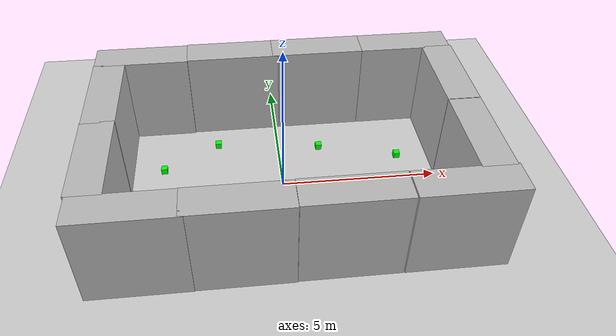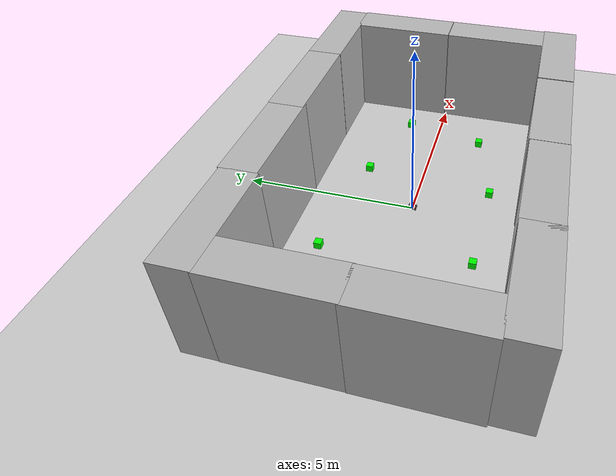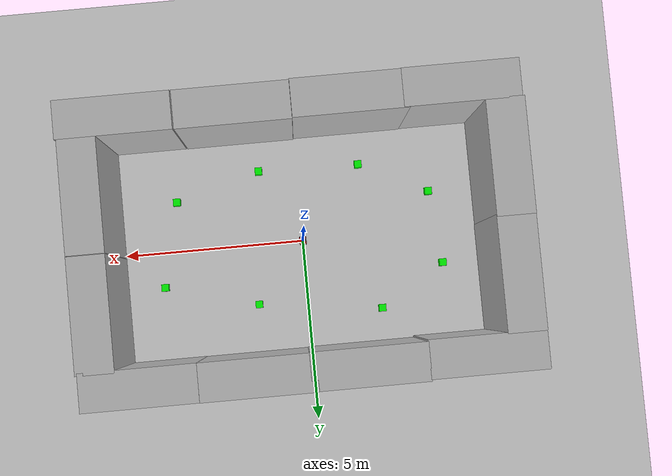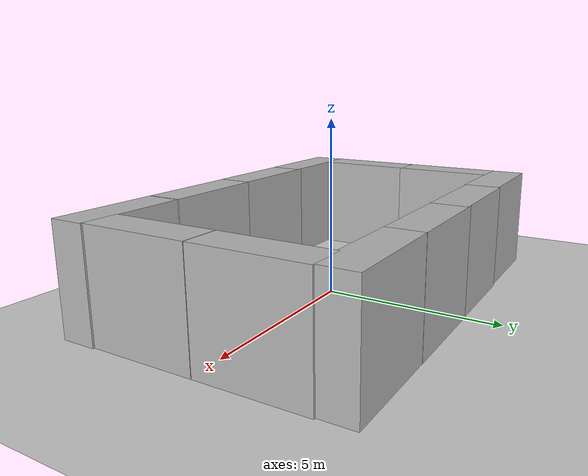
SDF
<sdf version="1.7">
 <world name="default">
  <light name="sun" type="directional">
   <pose>0 0 10 0 -0 0</pose>
   <diffuse>0.8 0.8 0.8 1</diffuse>
   <specular>0.2 0.2 0.2 1</specular>
   <attenuation>
    <range>1000</range>
    <constant>0.9</constant>
    <linear>0.01</linear>
    <quadratic>0.001</quadratic>
   </attenuation>
   <direction>-0.5 0.1 -0.9</direction>
   <spot><inner_angle>0</inner_angle><outer_angle>0</outer_angle><falloff>0</falloff></spot>
  </light>
  <model name="ground_plane">
   <static>1</static>
   <link name="link">
    <collision name="collision">
     <geometry><plane><normal>0 0 1</normal><size>100 100</size></plane></geometry>
     <surface>
      <contact><collide_bitmask>65535</collide_bitmask></contact>
      <friction><ode><mu>100</mu><mu2>50</mu2></ode></friction>
     </surface>
    </collision>
    <visual name="visual">
     <cast_shadows>0</cast_shadows>
     <geometry><plane><normal>0 0 1</normal><size>100 100</size></plane></geometry>
     <material>
      <script><uri>file://media/materials/scripts/gazebo.material</uri><name>Gazebo/Grey</name></script>
     </material>
    </visual>
   </link>
  </model>
  <gravity>0 0 -9.8</gravity>
  <magnetic_field>6e-06 2.3e-05 -4.2e-05</magnetic_field>
  <atmosphere type="adiabatic"/>
  <physics type="ode">
   <max_step_size>0.001</max_step_size>
   <real_time_factor>1</real_time_factor>
   <real_time_update_rate>1000</real_time_update_rate>
  </physics>
  <scene><ambient>0.4 0.4 0.4 1</ambient><background>0.7 0.7 0.7 1</background><shadows>1</shadows></scene>
  <spherical_coordinates>
   <surface_model>EARTH_WGS84</surface_model>
   <latitude_deg>0</latitude_deg>
   <longitude_deg>0</longitude_deg>
   <elevation>0</elevation>
   <heading_deg>0</heading_deg>
  </spherical_coordinates>
  <model name="brick_box_3x1x3">
   <static>1</static>
   <link name="chassis">
    <pose>0 0 1.5 0 -0 0</pose>
    <collision name="collision"><geometry><box><size>3 1 3</size></box></geometry></collision>
    <visual name="visual">
     <geometry><mesh><uri>model://brick_box_3x1x3/meshes/simple_box.dae</uri><scale>3 1 3</scale></mesh></geometry>
     <material>
      <script>
       <uri>model://brick_box_3x1x3/materials/scripts</uri>
       <uri>model://brick_box_3x1x3/materials/textures</uri>
       <name>BrickBox/Diffuse</name>
      </script>
     </material>
    </visual>
   </link>
   <pose>1.52081 -3.39897 0 0 -0 0</pose>
  </model>
  <model name="brick_box_3x1x3_0">
   <static>1</static>
   <link name="chassis">
    <pose>0 0 1.5 0 -0 0</pose>
    <collision name="collision"><geometry><box><size>3 1 3</size></box></geometry></collision>
    <visual name="visual">
     <geometry><mesh><uri>model://brick_box_3x1x3/meshes/simple_box.dae</uri><scale>3 1 3</scale></mesh></geometry>
     <material>
      <script>
       <uri>model://brick_box_3x1x3/materials/scripts</uri>
       <uri>model://brick_box_3x1x3/materials/textures</uri>
       <name>BrickBox/Diffuse</name>
      </script>
     </material>
    </visual>
   </link>
   <pose>1.45665 3.50205 0 0 -0 0</pose>
  </model>
  <model name="brick_box_3x1x3_1">
   <static>1</static>
   <link name="chassis">
    <pose>0 0 1.5 0 -0 0</pose>
    <collision name="collision"><geometry><box><size>3 1 3</size></box></geometry></collision>
    <visual name="visual">
     <geometry><mesh><uri>model://brick_box_3x1x3/meshes/simple_box.dae</uri><scale>3 1 3</scale></mesh></geometry>
     <material>
      <script>
       <uri>model://brick_box_3x1x3/materials/scripts</uri>
       <uri>model://brick_box_3x1x3/materials/textures</uri>
       <name>BrickBox/Diffuse</name>
      </script>
     </material>
    </visual>
   </link>
   <pose>-1.37044 3.48815 0 0 -0 0</pose>
  </model>
  <model name="brick_box_3x1x3_2">
   <static>1</static>
   <link name="chassis">
    <pose>0 0 1.5 0 -0 0</pose>
    <collision name="collision"><geometry><box><size>3 1 3</size></box></geometry></collision>
    <visual name="visual">
     <geometry><mesh><uri>model://brick_box_3x1x3/meshes/simple_box.dae</uri><scale>3 1 3</scale></mesh></geometry>
     <material>
      <script>
       <uri>model://brick_box_3x1x3/materials/scripts</uri>
       <uri>model://brick_box_3x1x3/materials/textures</uri>
       <name>BrickBox/Diffuse</name>
      </script>
     </material>
    </visual>
   </link>
   <pose>-1.48476 -3.42208 0 0 -0 0</pose>
  </model>
  <model name="brick_box_3x1x3_3">
   <static>1</static>
   <link name="chassis">
    <pose>0 0 1.5 0 -0 0</pose>
    <collision name="collision"><geometry><box><size>3 1 3</size></box></geometry></collision>
    <visual name="visual">
     <geometry><mesh><uri>model://brick_box_3x1x3/meshes/simple_box.dae</uri><scale>3 1 3</scale></mesh></geometry>
     <material>
      <script>
       <uri>model://brick_box_3x1x3/materials/scripts</uri>
       <uri>model://brick_box_3x1x3/materials/textures</uri>
       <name>BrickBox/Diffuse</name>
      </script>
     </material>
    </visual>
   </link>
   <pose>-4.32862 -3.4352 0 0 -0 0</pose>
  </model>
  <model name="brick_box_3x1x3_4">
   <static>1</static>
   <link name="chassis">
    <pose>0 0 1.5 0 -0 0</pose>
    <collision name="collision"><geometry><box><size>3 1 3</size></box></geometry></collision>
    <visual name="visual">
     <geometry><mesh><uri>model://brick_box_3x1x3/meshes/simple_box.dae</uri><scale>3 1 3</scale></mesh></geometry>
     <material>
      <script>
       <uri>model://brick_box_3x1x3/materials/scripts</uri>
       <uri>model://brick_box_3x1x3/materials/textures</uri>
       <name>BrickBox/Diffuse</name>
      </script>
     </material>
    </visual>
   </link>
   <pose>-4.35257 3.44636 0 0 -0 0</pose>
  </model>
  <model name="brick_box_3x1x3_5">
   <static>1</static>
   <link name="chassis">
    <pose>0 0 1.5 0 -0 0</pose>
    <collision name="collision"><geometry><box><size>3 1 3</size></box></geometry></collision>
    <visual name="visual">
     <geometry><mesh><uri>model://brick_box_3x1x3/meshes/simple_box.dae</uri><scale>3 1 3</scale></mesh></geometry>
     <material>
      <script>
       <uri>model://brick_box_3x1x3/materials/scripts</uri>
       <uri>model://brick_box_3x1x3/materials/textures</uri>
       <name>BrickBox/Diffuse</name>
      </script>
     </material>
    </visual>
   </link>
   <pose>-5.37676 -1.46455 0 0 -0 1.57</pose>
  </model>
  <model name="brick_box_3x1x3_5_clone">
   <static>1</static>
   <link name="chassis">
    <pose>0 0 1.5 0 -0 0</pose>
    <collision name="collision"><geometry><box><size>3 1 3</size></box></geometry></collision>
    <visual name="visual">
     <geometry><mesh><uri>model://brick_box_3x1x3/meshes/simple_box.dae</uri><scale>3 1 3</scale></mesh></geometry>
     <material>
      <script>
       <uri>model://brick_box_3x1x3/materials/scripts</uri>
       <uri>model://brick_box_3x1x3/materials/textures</uri>
       <name>BrickBox/Diffuse</name>
      </script>
     </material>
    </visual>
   </link>
   <pose>-5.36471 1.48167 0 0 -0 1.57</pose>
  </model>
  <model name="brick_box_3x1x3_6">
   <static>1</static>
   <link name="chassis">
    <pose>0 0 1.5 0 -0 0</pose>
    <collision name="collision"><geometry><box><size>3 1 3</size></box></geometry></collision>
    <visual name="visual">
     <geometry><mesh><uri>model://brick_box_3x1x3/meshes/simple_box.dae</uri><scale>3 1 3</scale></mesh></geometry>
     <material>
      <script>
       <uri>model://brick_box_3x1x3/materials/scripts</uri>
       <uri>model://brick_box_3x1x3/materials/textures</uri>
       <name>BrickBox/Diffuse</name>
      </script>
     </material>
    </visual>
   </link>
   <pose>4.55212 -3.40433 0 0 -0 0</pose>
  </model>
  <model name="brick_box_3x1x3_7">
   <static>1</static>
   <link name="chassis">
    <pose>0 0 1.5 0 -0 0</pose>
    <collision name="collision"><geometry><box><size>3 1 3</size></box></geometry></collision>
    <visual name="visual">
     <geometry><mesh><uri>model://brick_box_3x1x3/meshes/simple_box.dae</uri><scale>3 1 3</scale></mesh></geometry>
     <material>
      <script>
       <uri>model://brick_box_3x1x3/materials/scripts</uri>
       <uri>model://brick_box_3x1x3/materials/textures</uri>
       <name>BrickBox/Diffuse</name>
      </script>
     </material>
    </visual>
   </link>
   <pose>4.45684 3.49752 0 0 -0 0</pose>
  </model>
  <model name="brick_box_3x1x3_8">
   <static>1</static>
   <link name="chassis">
    <pose>0 0 1.5 0 -0 0</pose>
    <collision name="collision"><geometry><box><size>3 1 3</size></box></geometry></collision>
    <visual name="visual">
     <geometry><mesh><uri>model://brick_box_3x1x3/meshes/simple_box.dae</uri><scale>3 1 3</scale></mesh></geometry>
     <material>
      <script>
       <uri>model://brick_box_3x1x3/materials/scripts</uri>
       <uri>model://brick_box_3x1x3/materials/textures</uri>
       <name>BrickBox/Diffuse</name>
      </script>
     </material>
    </visual>
   </link>
   <pose>5.50502 -1.44668 0 0 -0 1.57</pose>
  </model>
  <model name="brick_box_3x1x3_9">
   <static>1</static>
   <link name="chassis">
    <pose>0 0 1.5 0 -0 0</pose>
    <collision name="collision"><geometry><box><size>3 1 3</size></box></geometry></collision>
    <visual name="visual">
     <geometry><mesh><uri>model://brick_box_3x1x3/meshes/simple_box.dae</uri><scale>3 1 3</scale></mesh></geometry>
     <material>
      <script>
       <uri>model://brick_box_3x1x3/materials/scripts</uri>
       <uri>model://brick_box_3x1x3/materials/textures</uri>
       <name>BrickBox/Diffuse</name>
      </script>
     </material>
    </visual>
   </link>
   <pose>5.50702 1.56976 0 0 -0 1.57</pose>
  </model>
  <model name="rosbot">
   <link name="base_link">
    <inertial>
     <pose>-0 0 0.04003 0 -0 0</pose>
     <mass>5.01002</mass>
     <inertia>
      <ixx>0.0100024</ixx>
      <ixy>0.01</ixy>
      <ixz>3.8397e-08</ixz>
      <iyy>0.0100025</iyy>
      <iyz>0.01</iyz>
      <izz>0.01</izz>
     </inertia>
    </inertial>
    <collision name="base_link_fixed_joint_lump__body_link_collision">
     <pose>0 0 0.02 0 -0 0</pose>
     <geometry><box><size>0.2 0.15 0.04</size></box></geometry>
    </collision>
    <collision name="base_link_fixed_joint_lump__camera_link_collision_1">
     <pose>-0.01 0 0.18 0 -0 0</pose>
     <geometry><box><size>0.001 0.001 0.001</size></box></geometry>
    </collision>
    <collision name="base_link_fixed_joint_lump__laser_collision_2">
     <pose>0.02 0 0.058 1.5707 0 1.56682</pose>
     <geometry>
      <mesh>
       <scale>0.001 0.001 0.001</scale>
       <uri>/home/kent/cs81/sim_ws/src/rosbot_ros/src/rosbot_description/meshes/rplidar.stl</uri>
      </mesh>
     </geometry>
    </collision>
    <visual name="base_link_fixed_joint_lump__body_link_visual">
     <pose>0 0 -0.02 1.5707 0 1.5707</pose>
     <geometry>
      <mesh>
       <scale>0.001 0.001 0.001</scale>
       <uri>/home/kent/cs81/sim_ws/src/rosbot_ros/src/rosbot_description/meshes/box.stl</uri>
      </mesh>
     </geometry>
    </visual>
    <visual name="base_link_fixed_joint_lump__camera_link_visual_1">
     <pose>-0.04 0 0.15 1.5707 0 1.5707</pose>
     <geometry>
      <mesh>
       <scale>0.001 0.001 0.001</scale>
       <uri>/home/kent/cs81/sim_ws/src/rosbot_ros/src/rosbot_description/meshes/astra.stl</uri>
      </mesh>
     </geometry>
     <material>
      <script><name>Gazebo/Black</name><uri>file://media/materials/scripts/gazebo.material</uri></script>
     </material>
    </visual>
    <visual name="base_link_fixed_joint_lump__laser_visual_2">
     <pose>0.02 0 0.058 1.5707 0 1.56682</pose>
     <geometry>
      <mesh>
       <scale>0.001 0.001 0.001</scale>
       <uri>/home/kent/cs81/sim_ws/src/rosbot_ros/src/rosbot_description/meshes/rplidar.stl</uri>
      </mesh>
     </geometry>
     <material>
      <script><name>Gazebo/Black</name><uri>file://media/materials/scripts/gazebo.material</uri></script>
     </material>
    </visual>
    <visual name="base_link_fixed_joint_lump__top_visual_3">
     <pose>0 0 0.055 1.5707 0 1.5707</pose>
     <geometry>
      <mesh>
       <scale>0.001 0.001 0.001</scale>
       <uri>/home/kent/cs81/sim_ws/src/rosbot_ros/src/rosbot_description/meshes/upper.stl</uri>
      </mesh>
     </geometry>
     <material>
      <script><name>Gazebo/Red</name><uri>file://media/materials/scripts/gazebo.material</uri></script>
     </material>
    </visual>
    <sensor name="openni_camera_camera" type="depth">
     <always_on>1</always_on>
     <visualize>1</visualize>
     <camera>
      <horizontal_fov>1.047</horizontal_fov>
      <image><width>640</width><height>480</height><format>R8G8B8</format></image>
      <depth_camera><output>depths</output></depth_camera>
      <clip><near>0.1</near><far>100</far></clip>
     </camera>
     <plugin name="kinect_controller" filename="libgazebo_ros_openni_kinect.so">
      <alwaysOn>1</alwaysOn>
      <updateRate>10.0</updateRate>
      <cameraName>camera</cameraName>
      <frameName>camera_depth_frame</frameName>
      <imageTopicName>color/image_raw</imageTopicName>
      <depthImageTopicName>depth/image_raw</depthImageTopicName>
      <pointCloudTopicName>depth/points</pointCloudTopicName>
      <cameraInfoTopicName>color/camera_info</cameraInfoTopicName>
      <depthImageCameraInfoTopicName>depth/camera_info</depthImageCameraInfoTopicName>
      <pointCloudCutoff>0.4</pointCloudCutoff>
      <hackBaseline>0.07</hackBaseline>
      <distortionK1>0.0</distortionK1>
      <distortionK2>0.0</distortionK2>
      <distortionK3>0.0</distortionK3>
      <distortionT1>0.0</distortionT1>
      <distortionT2>0.0</distortionT2>
      <CxPrime>0.0</CxPrime>
      <Cx>0.0</Cx>
      <Cy>0.0</Cy>
      <focalLength>0.0</focalLength>
      <robotNamespace>/</robotNamespace>
     </plugin>
     <pose>-0.03 0 0.18 0 -0 0</pose>
    </sensor>
    <sensor name="range_fl" type="ray">
     <update_rate>5</update_rate>
     <ray>
      <scan>
       <horizontal>
        <samples>5</samples>
        <resolution>1</resolution>
        <min_angle>-0.05</min_angle>
        <max_angle>0.05</max_angle>
       </horizontal>
       <vertical>
        <samples>5</samples>
        <resolution>1</resolution>
        <min_angle>-0.05</min_angle>
        <max_angle>0.05</max_angle>
       </vertical>
      </scan>
      <range><min>0.01</min><max>0.9</max><resolution>0.01</resolution></range>
     </ray>
     <plugin name="gazebo_ros_range" filename="libgazebo_ros_range.so">
      <gaussianNoise>0.005</gaussianNoise>
      <alwaysOn>1</alwaysOn>
      <updateRate>5</updateRate>
      <topicName>range/fl</topicName>
      <frameName>range_fl</frameName>
      <fov>0.1</fov>
      <radiation>ultrasound</radiation>
      <robotNamespace>/</robotNamespace>
     </plugin>
     <pose>0.1 0.05 0.01 0 -0 0.13</pose>
    </sensor>
    <sensor name="range_fr" type="ray">
     <update_rate>5</update_rate>
     <ray>
      <scan>
       <horizontal>
        <samples>5</samples>
        <resolution>1</resolution>
        <min_angle>-0.05</min_angle>
        <max_angle>0.05</max_angle>
       </horizontal>
       <vertical>
        <samples>5</samples>
        <resolution>1</resolution>
        <min_angle>-0.05</min_angle>
        <max_angle>0.05</max_angle>
       </vertical>
      </scan>
      <range><min>0.01</min><max>0.9</max><resolution>0.01</resolution></range>
     </ray>
     <plugin name="gazebo_ros_range" filename="libgazebo_ros_range.so">
      <gaussianNoise>0.005</gaussianNoise>
      <alwaysOn>1</alwaysOn>
      <updateRate>5</updateRate>
      <topicName>range/fr</topicName>
      <frameName>range_fr</frameName>
      <fov>0.1</fov>
      <radiation>ultrasound</radiation>
      <robotNamespace>/</robotNamespace>
     </plugin>
     <pose>0.1 -0.05 0.01 0 0 -0.13</pose>
    </sensor>
    <sensor name="range_rl" type="ray">
     <update_rate>5</update_rate>
     <ray>
      <scan>
       <horizontal>
        <samples>5</samples>
        <resolution>1</resolution>
        <min_angle>-0.05</min_angle>
        <max_angle>0.05</max_angle>
       </horizontal>
       <vertical>
        <samples>5</samples>
        <resolution>1</resolution>
        <min_angle>-0.05</min_angle>
        <max_angle>0.05</max_angle>
       </vertical>
      </scan>
      <range><min>0.01</min><max>0.9</max><resolution>0.01</resolution></range>
     </ray>
     <plugin name="gazebo_ros_range" filename="libgazebo_ros_range.so">
      <gaussianNoise>0.005</gaussianNoise>
      <alwaysOn>1</alwaysOn>
      <updateRate>5</updateRate>
      <topicName>range/rl</topicName>
      <frameName>range_rl</frameName>
      <fov>0.1</fov>
      <radiation>ultrasound</radiation>
      <robotNamespace>/</robotNamespace>
     </plugin>
     <pose>-0.1 0.05 0.01 0 -0 3.01</pose>
    </sensor>
    <sensor name="range_rr" type="ray">
     <update_rate>5</update_rate>
     <ray>
      <scan>
       <horizontal>
        <samples>5</samples>
        <resolution>1</resolution>
        <min_angle>-0.05</min_angle>
        <max_angle>0.05</max_angle>
       </horizontal>
       <vertical>
        <samples>5</samples>
        <resolution>1</resolution>
        <min_angle>-0.05</min_angle>
        <max_angle>0.05</max_angle>
       </vertical>
      </scan>
      <range><min>0.01</min><max>0.9</max><resolution>0.01</resolution></range>
     </ray>
     <plugin name="gazebo_ros_range" filename="libgazebo_ros_range.so">
      <gaussianNoise>0.005</gaussianNoise>
      <alwaysOn>1</alwaysOn>
      <updateRate>5</updateRate>
      <topicName>range/rr</topicName>
      <frameName>range_rr</frameName>
      <fov>0.1</fov>
      <radiation>ultrasound</radiation>
      <robotNamespace>/</robotNamespace>
     </plugin>
     <pose>-0.1 -0.05 0.01 0 -0 -3.01319</pose>
    </sensor>
    <sensor name="head_rplidar_sensor" type="ray">
     <visualize>0</visualize>
     <update_rate>40</update_rate>
     <ray>
      <scan>
       <horizontal>
        <samples>720</samples>
        <resolution>1</resolution>
        <min_angle>-3.14159</min_angle>
        <max_angle>3.14159</max_angle>
       </horizontal>
       <vertical><samples>1</samples><min_angle>0</min_angle><max_angle>0</max_angle></vertical>
      </scan>
      <range><min>0.2</min><max>12</max><resolution>0.01</resolution></range>
      <noise><type>gaussian</type><mean>0</mean><stddev>0.01</stddev></noise>
     </ray>
     <plugin name="gazebo_ros_head_rplidar_controller" filename="libgazebo_ros_laser.so">
      <topicName>scan</topicName>
      <frameName>laser</frameName>
      <robotNamespace>/</robotNamespace>
     </plugin>
     <pose>0.02 0 0.058 0 -0 3.14</pose>
    </sensor>
    <sensor name="imu_sensor" type="imu">
     <always_on>1</always_on>
     <update_rate>10</update_rate>
     <visualize>1</visualize>
     <topic>imu</topic>
     <plugin name="imu_plugin" filename="libgazebo_ros_imu_sensor.so">
      <topicName>imu</topicName>
      <bodyName>imu_link</bodyName>
      <updateRateHZ>10.0</updateRateHZ>
      <gaussianNoise>0.0</gaussianNoise>
      <xyzOffset>0 0 0</xyzOffset>
      <rpyOffset>0 0 0</rpyOffset>
      <frameName>imu_link</frameName>
      <robotNamespace>/</robotNamespace>
     </plugin>
    </sensor>
   </link>
   <joint name="front_left_wheel_hinge" type="revolute">
    <pose relative_to="base_link">0.05 0.11 0 0 -0 0</pose>
    <parent>base_link</parent>
    <child>front_left_wheel</child>
    <axis>
     <xyz>0 1 0</xyz>
     <limit><effort>1</effort><velocity>10</velocity><lower>-1e+16</lower><upper>1e+16</upper></limit>
     <dynamics><spring_reference>0</spring_reference><spring_stiffness>0</spring_stiffness></dynamics>
    </axis>
   </joint>
   <link name="front_left_wheel">
    <pose relative_to="front_left_wheel_hinge">0 0 0 0 -0 0</pose>
    <inertial>
     <pose>0 0 0 -0 1.5707 1.5707</pose>
     <mass>0.5</mass>
     <inertia><ixx>0.001</ixx><ixy>0</ixy><ixz>0</ixz><iyy>0.001</iyy><iyz>0</iyz><izz>0.001</izz></inertia>
    </inertial>
    <collision name="front_left_wheel_collision">
     <pose>0 -0.014 0 1.5708 -0 0</pose>
     <geometry><cylinder><length>0.036</length><radius>0.04</radius></cylinder></geometry>
    </collision>
    <visual name="front_left_wheel_visual">
     <pose>0 0 0 0 -0 1.5707</pose>
     <geometry>
      <mesh>
       <scale>0.001 0.001 0.001</scale>
       <uri>/home/kent/cs81/sim_ws/src/rosbot_ros/src/rosbot_description/meshes/wheel.stl</uri>
      </mesh>
     </geometry>
     <material>
      <script><name>Gazebo/Black</name><uri>file://media/materials/scripts/gazebo.material</uri></script>
     </material>
    </visual>
   </link>
   <joint name="front_right_wheel_hinge" type="revolute">
    <pose relative_to="base_link">0.05 -0.11 0 0 -0 0</pose>
    <parent>base_link</parent>
    <child>front_right_wheel</child>
    <axis>
     <xyz>0 1 0</xyz>
     <limit><effort>1</effort><velocity>10</velocity><lower>-1e+16</lower><upper>1e+16</upper></limit>
     <dynamics><spring_reference>0</spring_reference><spring_stiffness>0</spring_stiffness></dynamics>
    </axis>
   </joint>
   <link name="front_right_wheel">
    <pose relative_to="front_right_wheel_hinge">0 0 0 0 -0 0</pose>
    <inertial>
     <pose>0 0 0 -0 1.5707 1.5707</pose>
     <mass>0.5</mass>
     <inertia><ixx>0.001</ixx><ixy>0</ixy><ixz>0</ixz><iyy>0.001</iyy><iyz>0</iyz><izz>0.001</izz></inertia>
    </inertial>
    <collision name="front_right_wheel_collision">
     <pose>0 0.014 0 1.5708 -0 0</pose>
     <geometry><cylinder><length>0.036</length><radius>0.04</radius></cylinder></geometry>
    </collision>
    <visual name="front_right_wheel_visual">
     <pose>0 0 0 0 0 -1.5707</pose>
     <geometry>
      <mesh>
       <scale>0.001 0.001 0.001</scale>
       <uri>/home/kent/cs81/sim_ws/src/rosbot_ros/src/rosbot_description/meshes/wheel.stl</uri>
      </mesh>
     </geometry>
     <material>
      <script><name>Gazebo/Black</name><uri>file://media/materials/scripts/gazebo.material</uri></script>
     </material>
    </visual>
   </link>
   <joint name="rear_left_wheel_hinge" type="revolute">
    <pose relative_to="base_link">-0.055 0.11 0 0 -0 0</pose>
    <parent>base_link</parent>
    <child>rear_left_wheel</child>
    <axis>
     <xyz>0 1 0</xyz>
     <limit><effort>1</effort><velocity>10</velocity><lower>-1e+16</lower><upper>1e+16</upper></limit>
     <dynamics><spring_reference>0</spring_reference><spring_stiffness>0</spring_stiffness></dynamics>
    </axis>
   </joint>
   <link name="rear_left_wheel">
    <pose relative_to="rear_left_wheel_hinge">0 0 0 0 -0 0</pose>
    <inertial>
     <pose>0 0 0 -0 1.5707 1.5707</pose>
     <mass>0.5</mass>
     <inertia><ixx>0.001</ixx><ixy>0</ixy><ixz>0</ixz><iyy>0.001</iyy><iyz>0</iyz><izz>0.001</izz></inertia>
    </inertial>
    <collision name="rear_left_wheel_collision">
     <pose>0 -0.014 0 1.5708 -0 0</pose>
     <geometry><cylinder><length>0.036</length><radius>0.04</radius></cylinder></geometry>
    </collision>
    <visual name="rear_left_wheel_visual">
     <pose>0 0 0 0 -0 1.5707</pose>
     <geometry>
      <mesh>
       <scale>0.001 0.001 0.001</scale>
       <uri>/home/kent/cs81/sim_ws/src/rosbot_ros/src/rosbot_description/meshes/wheel.stl</uri>
      </mesh>
     </geometry>
     <material>
      <script><name>Gazebo/Black</name><uri>file://media/materials/scripts/gazebo.material</uri></script>
     </material>
    </visual>
   </link>
   <joint name="rear_right_wheel_hinge" type="revolute">
    <pose relative_to="base_link">-0.055 -0.11 0 0 -0 0</pose>
    <parent>base_link</parent>
    <child>rear_right_wheel</child>
    <axis>
     <xyz>0 1 0</xyz>
     <limit><effort>1</effort><velocity>10</velocity><lower>-1e+16</lower><upper>1e+16</upper></limit>
     <dynamics><spring_reference>0</spring_reference><spring_stiffness>0</spring_stiffness></dynamics>
    </axis>
   </joint>
   <link name="rear_right_wheel">
    <pose relative_to="rear_right_wheel_hinge">0 0 0 0 -0 0</pose>
    <inertial>
     <pose>0 0 0 -0 1.5707 1.5707</pose>
     <mass>0.5</mass>
     <inertia><ixx>0.001</ixx><ixy>0</ixy><ixz>0</ixz><iyy>0.001</iyy><iyz>0</iyz><izz>0.001</izz></inertia>
    </inertial>
    <collision name="rear_right_wheel_collision">
     <pose>0 0.014 0 1.5708 -0 0</pose>
     <geometry><cylinder><length>0.036</length><radius>0.04</radius></cylinder></geometry>
    </collision>
    <visual name="rear_right_wheel_visual">
     <pose>0 0 0 0 0 -1.5707</pose>
     <geometry>
      <mesh>
       <scale>0.001 0.001 0.001</scale>
       <uri>/home/kent/cs81/sim_ws/src/rosbot_ros/src/rosbot_description/meshes/wheel.stl</uri>
      </mesh>
     </geometry>
     <material>
      <script><name>Gazebo/Black</name><uri>file://media/materials/scripts/gazebo.material</uri></script>
     </material>
    </visual>
   </link>
   <plugin name="skid_steer_drive_controller" filename="libgazebo_ros_skid_steer_drive.so">
    <updateRate>10.0</updateRate>
    <robotBaseFrame>/base_link</robotBaseFrame>
    <wheelSeparation>0.20</wheelSeparation>
    <wheelDiameter>0.08</wheelDiameter>
    <torque>5</torque>
    <leftFrontJoint>front_left_wheel_hinge</leftFrontJoint>
    <rightFrontJoint>front_right_wheel_hinge</rightFrontJoint>
    <leftRearJoint>rear_left_wheel_hinge</leftRearJoint>
    <rightRearJoint>rear_right_wheel_hinge</rightRearJoint>
    <topicName>cmd_vel</topicName>
    <commandTopic>cmd_vel</commandTopic>
    <broadcastTF>1</broadcastTF>
    <odometryTopic>odom</odometryTopic>
    <odometryFrame>/odom</odometryFrame>
    <covariance_x>0.000100</covariance_x>
    <covariance_y>0.000100</covariance_y>
    <covariance_yaw>0.010000</covariance_yaw>
    <robotNamespace>/</robotNamespace>
   </plugin>
   <static>0</static>
   <plugin name="gazebo_ros_control" filename="libgazebo_ros_control.so">
    <legacyModeNS>1</legacyModeNS>
    <robotNamespace>/</robotNamespace>
   </plugin>
   <pose>0.001859 0.003294 0.039995 2e-06 7e-06 -0.008374</pose>
  </model>
  <model name="green">
   <link name="link">
    <inertial>
     <mass>1</mass>
     <inertia>
      <ixx>0.166667</ixx>
      <ixy>0</ixy>
      <ixz>0</ixz>
      <iyy>0.166667</iyy>
      <iyz>0</iyz>
      <izz>0.166667</izz>
     </inertia>
    </inertial>
    <pose>-0 -0 -0.4 0 -0 0</pose>
    <visual name="visual">
     <geometry><box><size>0.2 0.2 0.2</size></box></geometry>
     <material>
      <script><name>Gazebo/Grey</name><uri>file://media/materials/scripts/gazebo.material</uri></script>
      <shader type="pixel"><normal_map>__default__</normal_map></shader>
      <ambient>0 1 0 1</ambient>
      <diffuse>0 1 0 1</diffuse>
      <specular>0 1 0 1</specular>
      <emissive>0 0 0 1</emissive>
     </material>
    </visual>
    <collision name="collision">
     <geometry><box><size>0.2 0.2 0.2</size></box></geometry>
     <surface>
      <friction>
       <ode><mu>1</mu><mu2>1</mu2><fdir1>0 0 0</fdir1><slip1>0</slip1><slip2>0</slip2></ode>
       <torsional>
        <coefficient>1</coefficient>
        <patch_radius>0</patch_radius>
        <surface_radius>0</surface_radius>
        <use_patch_radius>1</use_patch_radius>
        <ode><slip>0</slip></ode>
       </torsional>
      </friction>
      <bounce><restitution_coefficient>0</restitution_coefficient><threshold>1e+06</threshold></bounce>
      <contact>
       <collide_without_contact>0</collide_without_contact>
       <collide_without_contact_bitmask>1</collide_without_contact_bitmask>
       <collide_bitmask>1</collide_bitmask>
       <ode>
        <soft_cfm>0</soft_cfm>
        <soft_erp>0.2</soft_erp>
        <kp>1e+13</kp>
        <kd>1</kd>
        <max_vel>0.01</max_vel>
        <min_depth>0</min_depth>
       </ode>
       <bullet>
        <split_impulse>1</split_impulse>
        <split_impulse_penetration_threshold>-0.01</split_impulse_penetration_threshold>
        <soft_cfm>0</soft_cfm>
        <soft_erp>0.2</soft_erp>
        <kp>1e+13</kp>
        <kd>1</kd>
       </bullet>
      </contact>
     </surface>
    </collision>
   </link>
   <static>0</static>
   <pose>3.44254 -1.38773 0.499999 1e-06 -6e-06 -4e-06</pose>
  </model>
  <model name="green_0">
   <link name="link">
    <inertial>
     <mass>1</mass>
     <inertia>
      <ixx>0.166667</ixx>
      <ixy>0</ixy>
      <ixz>0</ixz>
      <iyy>0.166667</iyy>
      <iyz>0</iyz>
      <izz>0.166667</izz>
     </inertia>
    </inertial>
    <pose>-0 -0 -0.4 0 -0 0</pose>
    <visual name="visual">
     <geometry><box><size>0.2 0.2 0.2</size></box></geometry>
     <material>
      <script><name>Gazebo/Grey</name><uri>file://media/materials/scripts/gazebo.material</uri></script>
      <shader type="pixel"><normal_map>__default__</normal_map></shader>
      <ambient>0 1 0 1</ambient>
      <diffuse>0 1 0 1</diffuse>
      <specular>0 1 0 1</specular>
      <emissive>0 0 0 1</emissive>
     </material>
    </visual>
    <collision name="collision">
     <geometry><box><size>0.2 0.2 0.2</size></box></geometry>
     <surface>
      <friction>
       <ode><mu>1</mu><mu2>1</mu2><fdir1>0 0 0</fdir1><slip1>0</slip1><slip2>0</slip2></ode>
       <torsional>
        <coefficient>1</coefficient>
        <patch_radius>0</patch_radius>
        <surface_radius>0</surface_radius>
        <use_patch_radius>1</use_patch_radius>
        <ode><slip>0</slip></ode>
       </torsional>
      </friction>
      <bounce><restitution_coefficient>0</restitution_coefficient><threshold>1e+06</threshold></bounce>
      <contact>
       <collide_without_contact>0</collide_without_contact>
       <collide_without_contact_bitmask>1</collide_without_contact_bitmask>
       <collide_bitmask>1</collide_bitmask>
       <ode>
        <soft_cfm>0</soft_cfm>
        <soft_erp>0.2</soft_erp>
        <kp>1e+13</kp>
        <kd>1</kd>
        <max_vel>0.01</max_vel>
        <min_depth>0</min_depth>
       </ode>
       <bullet>
        <split_impulse>1</split_impulse>
        <split_impulse_penetration_threshold>-0.01</split_impulse_penetration_threshold>
        <soft_cfm>0</soft_cfm>
        <soft_erp>0.2</soft_erp>
        <kp>1e+13</kp>
        <kd>1</kd>
       </bullet>
      </contact>
     </surface>
    </collision>
   </link>
   <static>0</static>
   <pose>3.96855 0.981037 0.5 -0 -4e-06 -2e-06</pose>
  </model>
  <model name="green_1">
   <link name="link">
    <inertial>
     <mass>1</mass>
     <inertia>
      <ixx>0.166667</ixx>
      <ixy>0</ixy>
      <ixz>0</ixz>
      <iyy>0.166667</iyy>
      <iyz>0</iyz>
      <izz>0.166667</izz>
     </inertia>
    </inertial>
    <pose>-0 -0 -0.4 0 -0 0</pose>
    <visual name="visual">
     <geometry><box><size>0.2 0.2 0.2</size></box></geometry>
     <material>
      <script><name>Gazebo/Grey</name><uri>file://media/materials/scripts/gazebo.material</uri></script>
      <shader type="pixel"><normal_map>__default__</normal_map></shader>
      <ambient>0 1 0 1</ambient>
      <diffuse>0 1 0 1</diffuse>
      <specular>0 1 0 1</specular>
      <emissive>0 0 0 1</emissive>
     </material>
    </visual>
    <collision name="collision">
     <geometry><box><size>0.2 0.2 0.2</size></box></geometry>
     <surface>
      <friction>
       <ode><mu>1</mu><mu2>1</mu2><fdir1>0 0 0</fdir1><slip1>0</slip1><slip2>0</slip2></ode>
       <torsional>
        <coefficient>1</coefficient>
        <patch_radius>0</patch_radius>
        <surface_radius>0</surface_radius>
        <use_patch_radius>1</use_patch_radius>
        <ode><slip>0</slip></ode>
       </torsional>
      </friction>
      <bounce><restitution_coefficient>0</restitution_coefficient><threshold>1e+06</threshold></bounce>
      <contact>
       <collide_without_contact>0</collide_without_contact>
       <collide_without_contact_bitmask>1</collide_without_contact_bitmask>
       <collide_bitmask>1</collide_bitmask>
       <ode>
        <soft_cfm>0</soft_cfm>
        <soft_erp>0.2</soft_erp>
        <kp>1e+13</kp>
        <kd>1</kd>
        <max_vel>0.01</max_vel>
        <min_depth>0</min_depth>
       </ode>
       <bullet>
        <split_impulse>1</split_impulse>
        <split_impulse_penetration_threshold>-0.01</split_impulse_penetration_threshold>
        <soft_cfm>0</soft_cfm>
        <soft_erp>0.2</soft_erp>
        <kp>1e+13</kp>
        <kd>1</kd>
       </bullet>
      </contact>
     </surface>
    </collision>
   </link>
   <static>0</static>
   <pose>1.38071 1.68385 0.499999 2e-06 -5e-06 -1e-06</pose>
  </model>
  <model name="green_2">
   <link name="link">
    <inertial>
     <mass>1</mass>
     <inertia>
      <ixx>0.166667</ixx>
      <ixy>0</ixy>
      <ixz>0</ixz>
      <iyy>0.166667</iyy>
      <iyz>0</iyz>
      <izz>0.166667</izz>
     </inertia>
    </inertial>
    <pose>-0 -0 -0.4 0 -0 0</pose>
    <visual name="visual">
     <geometry><box><size>0.2 0.2 0.2</size></box></geometry>
     <material>
      <script><name>Gazebo/Grey</name><uri>file://media/materials/scripts/gazebo.material</uri></script>
      <shader type="pixel"><normal_map>__default__</normal_map></shader>
      <ambient>0 1 0 1</ambient>
      <diffuse>0 1 0 1</diffuse>
      <specular>0 1 0 1</specular>
      <emissive>0 0 0 1</emissive>
     </material>
    </visual>
    <collision name="collision">
     <geometry><box><size>0.2 0.2 0.2</size></box></geometry>
     <surface>
      <friction>
       <ode><mu>1</mu><mu2>1</mu2><fdir1>0 0 0</fdir1><slip1>0</slip1><slip2>0</slip2></ode>
       <torsional>
        <coefficient>1</coefficient>
        <patch_radius>0</patch_radius>
        <surface_radius>0</surface_radius>
        <use_patch_radius>1</use_patch_radius>
        <ode><slip>0</slip></ode>
       </torsional>
      </friction>
      <bounce><restitution_coefficient>0</restitution_coefficient><threshold>1e+06</threshold></bounce>
      <contact>
       <collide_without_contact>0</collide_without_contact>
       <collide_without_contact_bitmask>1</collide_without_contact_bitmask>
       <collide_bitmask>1</collide_bitmask>
       <ode>
        <soft_cfm>0</soft_cfm>
        <soft_erp>0.2</soft_erp>
        <kp>1e+13</kp>
        <kd>1</kd>
        <max_vel>0.01</max_vel>
        <min_depth>0</min_depth>
       </ode>
       <bullet>
        <split_impulse>1</split_impulse>
        <split_impulse_penetration_threshold>-0.01</split_impulse_penetration_threshold>
        <soft_cfm>0</soft_cfm>
        <soft_erp>0.2</soft_erp>
        <kp>1e+13</kp>
        <kd>1</kd>
       </bullet>
      </contact>
     </surface>
    </collision>
   </link>
   <static>0</static>
   <pose>-2.05264 2.0876 0.499999 -2e-06 5e-06 -4e-06</pose>
  </model>
  <model name="green_3">
   <link name="link">
    <inertial>
     <mass>1</mass>
     <inertia>
      <ixx>0.166667</ixx>
      <ixy>0</ixy>
      <ixz>0</ixz>
      <iyy>0.166667</iyy>
      <iyz>0</iyz>
      <izz>0.166667</izz>
     </inertia>
    </inertial>
    <pose>-0 -0 -0.4 0 -0 0</pose>
    <visual name="visual">
     <geometry><box><size>0.2 0.2 0.2</size></box></geometry>
     <material>
      <script><name>Gazebo/Grey</name><uri>file://media/materials/scripts/gazebo.material</uri></script>
      <shader type="pixel"><normal_map>__default__</normal_map></shader>
      <ambient>0 1 0 1</ambient>
      <diffuse>0 1 0 1</diffuse>
      <specular>0 1 0 1</specular>
      <emissive>0 0 0 1</emissive>
     </material>
    </visual>
    <collision name="collision">
     <geometry><box><size>0.2 0.2 0.2</size></box></geometry>
     <surface>
      <friction>
       <ode><mu>1</mu><mu2>1</mu2><fdir1>0 0 0</fdir1><slip1>0</slip1><slip2>0</slip2></ode>
       <torsional>
        <coefficient>1</coefficient>
        <patch_radius>0</patch_radius>
        <surface_radius>0</surface_radius>
        <use_patch_radius>1</use_patch_radius>
        <ode><slip>0</slip></ode>
       </torsional>
      </friction>
      <bounce><restitution_coefficient>0</restitution_coefficient><threshold>1e+06</threshold></bounce>
      <contact>
       <collide_without_contact>0</collide_without_contact>
       <collide_without_contact_bitmask>1</collide_without_contact_bitmask>
       <collide_bitmask>1</collide_bitmask>
       <ode>
        <soft_cfm>0</soft_cfm>
        <soft_erp>0.2</soft_erp>
        <kp>1e+13</kp>
        <kd>1</kd>
        <max_vel>0.01</max_vel>
        <min_depth>0</min_depth>
       </ode>
       <bullet>
        <split_impulse>1</split_impulse>
        <split_impulse_penetration_threshold>-0.01</split_impulse_penetration_threshold>
        <soft_cfm>0</soft_cfm>
        <soft_erp>0.2</soft_erp>
        <kp>1e+13</kp>
        <kd>1</kd>
       </bullet>
      </contact>
     </surface>
    </collision>
   </link>
   <static>0</static>
   <pose>-3.85996 0.965781 0.499999 3e-06 -3e-06 0</pose>
  </model>
  <model name="green_4">
   <link name="link">
    <inertial>
     <mass>1</mass>
     <inertia>
      <ixx>0.166667</ixx>
      <ixy>0</ixy>
      <ixz>0</ixz>
      <iyy>0.166667</iyy>
      <iyz>0</iyz>
      <izz>0.166667</izz>
     </inertia>
    </inertial>
    <pose>-0 -0 -0.4 0 -0 0</pose>
    <visual name="visual">
     <geometry><box><size>0.2 0.2 0.2</size></box></geometry>
     <material>
      <script><name>Gazebo/Grey</name><uri>file://media/materials/scripts/gazebo.material</uri></script>
      <shader type="pixel"><normal_map>__default__</normal_map></shader>
      <ambient>0 1 0 1</ambient>
      <diffuse>0 1 0 1</diffuse>
      <specular>0 1 0 1</specular>
      <emissive>0 0 0 1</emissive>
     </material>
    </visual>
    <collision name="collision">
     <geometry><box><size>0.2 0.2 0.2</size></box></geometry>
     <surface>
      <friction>
       <ode><mu>1</mu><mu2>1</mu2><fdir1>0 0 0</fdir1><slip1>0</slip1><slip2>0</slip2></ode>
       <torsional>
        <coefficient>1</coefficient>
        <patch_radius>0</patch_radius>
        <surface_radius>0</surface_radius>
        <use_patch_radius>1</use_patch_radius>
        <ode><slip>0</slip></ode>
       </torsional>
      </friction>
      <bounce><restitution_coefficient>0</restitution_coefficient><threshold>1e+06</threshold></bounce>
      <contact>
       <collide_without_contact>0</collide_without_contact>
       <collide_without_contact_bitmask>1</collide_without_contact_bitmask>
       <collide_bitmask>1</collide_bitmask>
       <ode>
        <soft_cfm>0</soft_cfm>
        <soft_erp>0.2</soft_erp>
        <kp>1e+13</kp>
        <kd>1</kd>
        <max_vel>0.01</max_vel>
        <min_depth>0</min_depth>
       </ode>
       <bullet>
        <split_impulse>1</split_impulse>
        <split_impulse_penetration_threshold>-0.01</split_impulse_penetration_threshold>
        <soft_cfm>0</soft_cfm>
        <soft_erp>0.2</soft_erp>
        <kp>1e+13</kp>
        <kd>1</kd>
       </bullet>
      </contact>
     </surface>
    </collision>
   </link>
   <static>0</static>
   <pose>-3.63854 -1.07422 0.499999 4e-06 -3e-06 -1e-06</pose>
  </model>
  <model name="green_5">
   <link name="link">
    <inertial>
     <mass>1</mass>
     <inertia>
      <ixx>0.166667</ixx>
      <ixy>0</ixy>
      <ixz>0</ixz>
      <iyy>0.166667</iyy>
      <iyz>0</iyz>
      <izz>0.166667</izz>
     </inertia>
    </inertial>
    <pose>-0 -0 -0.4 0 -0 0</pose>
    <visual name="visual">
     <geometry><box><size>0.2 0.2 0.2</size></box></geometry>
     <material>
      <script><name>Gazebo/Grey</name><uri>file://media/materials/scripts/gazebo.material</uri></script>
      <shader type="pixel"><normal_map>__default__</normal_map></shader>
      <ambient>0 1 0 1</ambient>
      <diffuse>0 1 0 1</diffuse>
      <specular>0 1 0 1</specular>
      <emissive>0 0 0 1</emissive>
     </material>
    </visual>
    <collision name="collision">
     <geometry><box><size>0.2 0.2 0.2</size></box></geometry>
     <surface>
      <friction>
       <ode><mu>1</mu><mu2>1</mu2><fdir1>0 0 0</fdir1><slip1>0</slip1><slip2>0</slip2></ode>
       <torsional>
        <coefficient>1</coefficient>
        <patch_radius>0</patch_radius>
        <surface_radius>0</surface_radius>
        <use_patch_radius>1</use_patch_radius>
        <ode><slip>0</slip></ode>
       </torsional>
      </friction>
      <bounce><restitution_coefficient>0</restitution_coefficient><threshold>1e+06</threshold></bounce>
      <contact>
       <collide_without_contact>0</collide_without_contact>
       <collide_without_contact_bitmask>1</collide_without_contact_bitmask>
       <collide_bitmask>1</collide_bitmask>
       <ode>
        <soft_cfm>0</soft_cfm>
        <soft_erp>0.2</soft_erp>
        <kp>1e+13</kp>
        <kd>1</kd>
        <max_vel>0.01</max_vel>
        <min_depth>0</min_depth>
       </ode>
       <bullet>
        <split_impulse>1</split_impulse>
        <split_impulse_penetration_threshold>-0.01</split_impulse_penetration_threshold>
        <soft_cfm>0</soft_cfm>
        <soft_erp>0.2</soft_erp>
        <kp>1e+13</kp>
        <kd>1</kd>
       </bullet>
      </contact>
     </surface>
    </collision>
   </link>
   <static>0</static>
   <pose>-1.73504 -2.00713 0.499999 1e-06 6e-06 -2e-06</pose>
  </model>
  <model name="green_6">
   <link name="link">
    <inertial>
     <mass>1</mass>
     <inertia>
      <ixx>0.166667</ixx>
      <ixy>0</ixy>
      <ixz>0</ixz>
      <iyy>0.166667</iyy>
      <iyz>0</iyz>
      <izz>0.166667</izz>
     </inertia>
    </inertial>
    <pose>-0 -0 -0.4 0 -0 0</pose>
    <visual name="visual">
     <geometry><box><size>0.2 0.2 0.2</size></box></geometry>
     <material>
      <script><name>Gazebo/Grey</name><uri>file://media/materials/scripts/gazebo.material</uri></script>
      <shader type="pixel"><normal_map>__default__</normal_map></shader>
      <ambient>0 1 0 1</ambient>
      <diffuse>0 1 0 1</diffuse>
      <specular>0 1 0 1</specular>
      <emissive>0 0 0 1</emissive>
     </material>
    </visual>
    <collision name="collision">
     <geometry><box><size>0.2 0.2 0.2</size></box></geometry>
     <surface>
      <friction>
       <ode><mu>1</mu><mu2>1</mu2><fdir1>0 0 0</fdir1><slip1>0</slip1><slip2>0</slip2></ode>
       <torsional>
        <coefficient>1</coefficient>
        <patch_radius>0</patch_radius>
        <surface_radius>0</surface_radius>
        <use_patch_radius>1</use_patch_radius>
        <ode><slip>0</slip></ode>
       </torsional>
      </friction>
      <bounce><restitution_coefficient>0</restitution_coefficient><threshold>1e+06</threshold></bounce>
      <contact>
       <collide_without_contact>0</collide_without_contact>
       <collide_without_contact_bitmask>1</collide_without_contact_bitmask>
       <collide_bitmask>1</collide_bitmask>
       <ode>
        <soft_cfm>0</soft_cfm>
        <soft_erp>0.2</soft_erp>
        <kp>1e+13</kp>
        <kd>1</kd>
        <max_vel>0.01</max_vel>
        <min_depth>0</min_depth>
       </ode>
       <bullet>
        <split_impulse>1</split_impulse>
        <split_impulse_penetration_threshold>-0.01</split_impulse_penetration_threshold>
        <soft_cfm>0</soft_cfm>
        <soft_erp>0.2</soft_erp>
        <kp>1e+13</kp>
        <kd>1</kd>
       </bullet>
      </contact>
     </surface>
    </collision>
   </link>
   <static>0</static>
   <pose>1.07588 -2.05844 0.5 3e-06 -2e-06 -1e-06</pose>
  </model>
 </world>
</sdf>
